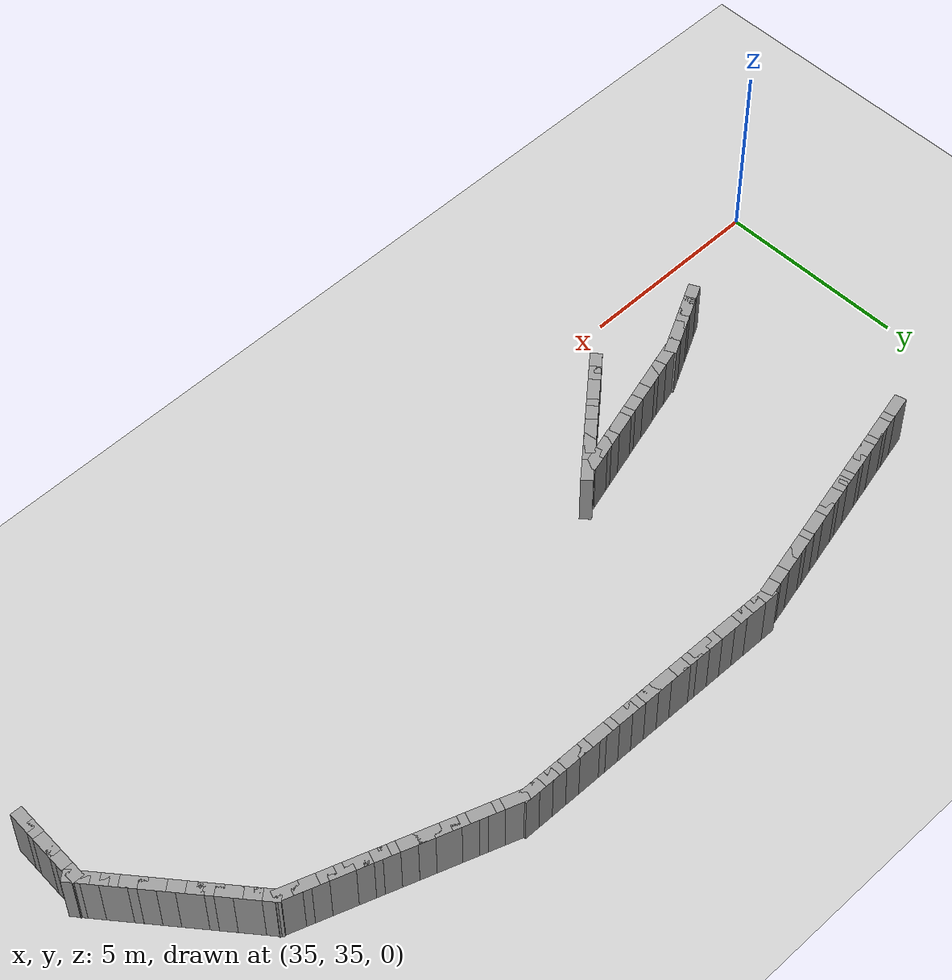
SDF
<sdf version="1.5">
 <world name="test_l_shape">
  <include><uri>model://sun</uri></include>
  <include><uri>model://ground_plane</uri></include>
  <model name="curbL_0">
   <static>true</static>
   <pose>59.346 38.500 0.750 0 0 2.252</pose>
   <link name="link">
    <collision name="col"><geometry><box><size>0.600 0.300 1.500</size></box></geometry></collision>
    <visual name="vis">
     <geometry><box><size>0.600 0.300 1.500</size></box></geometry>
     <material><ambient>0.6 0.6 0.6 1</ambient><diffuse>0.6 0.6 0.6 1</diffuse></material>
    </visual>
   </link>
  </model>
  <model name="curbL_1">
   <static>true</static>
   <pose>59.094 38.811 0.750 0 0 2.252</pose>
   <link name="link">
    <collision name="col"><geometry><box><size>0.600 0.300 1.500</size></box></geometry></collision>
    <visual name="vis">
     <geometry><box><size>0.600 0.300 1.500</size></box></geometry>
     <material><ambient>0.6 0.6 0.6 1</ambient><diffuse>0.6 0.6 0.6 1</diffuse></material>
    </visual>
   </link>
  </model>
  <model name="curbL_2">
   <static>true</static>
   <pose>58.842 39.122 0.750 0 0 2.252</pose>
   <link name="link">
    <collision name="col"><geometry><box><size>0.600 0.300 1.500</size></box></geometry></collision>
    <visual name="vis">
     <geometry><box><size>0.600 0.300 1.500</size></box></geometry>
     <material><ambient>0.6 0.6 0.6 1</ambient><diffuse>0.6 0.6 0.6 1</diffuse></material>
    </visual>
   </link>
  </model>
  <model name="curbL_3">
   <static>true</static>
   <pose>58.590 39.432 0.750 0 0 2.252</pose>
   <link name="link">
    <collision name="col"><geometry><box><size>0.600 0.300 1.500</size></box></geometry></collision>
    <visual name="vis">
     <geometry><box><size>0.600 0.300 1.500</size></box></geometry>
     <material><ambient>0.6 0.6 0.6 1</ambient><diffuse>0.6 0.6 0.6 1</diffuse></material>
    </visual>
   </link>
  </model>
  <model name="curbL_4">
   <static>true</static>
   <pose>58.338 39.743 0.750 0 0 2.252</pose>
   <link name="link">
    <collision name="col"><geometry><box><size>0.600 0.300 1.500</size></box></geometry></collision>
    <visual name="vis">
     <geometry><box><size>0.600 0.300 1.500</size></box></geometry>
     <material><ambient>0.6 0.6 0.6 1</ambient><diffuse>0.6 0.6 0.6 1</diffuse></material>
    </visual>
   </link>
  </model>
  <model name="curbL_5">
   <static>true</static>
   <pose>58.086 40.054 0.750 0 0 2.252</pose>
   <link name="link">
    <collision name="col"><geometry><box><size>0.600 0.300 1.500</size></box></geometry></collision>
    <visual name="vis">
     <geometry><box><size>0.600 0.300 1.500</size></box></geometry>
     <material><ambient>0.6 0.6 0.6 1</ambient><diffuse>0.6 0.6 0.6 1</diffuse></material>
    </visual>
   </link>
  </model>
  <model name="curbL_6">
   <static>true</static>
   <pose>57.834 40.365 0.750 0 0 2.252</pose>
   <link name="link">
    <collision name="col"><geometry><box><size>0.600 0.300 1.500</size></box></geometry></collision>
    <visual name="vis">
     <geometry><box><size>0.600 0.300 1.500</size></box></geometry>
     <material><ambient>0.6 0.6 0.6 1</ambient><diffuse>0.6 0.6 0.6 1</diffuse></material>
    </visual>
   </link>
  </model>
  <model name="curbL_7">
   <static>true</static>
   <pose>57.582 40.675 0.750 0 0 2.252</pose>
   <link name="link">
    <collision name="col"><geometry><box><size>0.600 0.300 1.500</size></box></geometry></collision>
    <visual name="vis">
     <geometry><box><size>0.600 0.300 1.500</size></box></geometry>
     <material><ambient>0.6 0.6 0.6 1</ambient><diffuse>0.6 0.6 0.6 1</diffuse></material>
    </visual>
   </link>
  </model>
  <model name="curbL_8">
   <static>true</static>
   <pose>57.330 40.986 0.750 0 0 2.252</pose>
   <link name="link">
    <collision name="col"><geometry><box><size>0.600 0.300 1.500</size></box></geometry></collision>
    <visual name="vis">
     <geometry><box><size>0.600 0.300 1.500</size></box></geometry>
     <material><ambient>0.6 0.6 0.6 1</ambient><diffuse>0.6 0.6 0.6 1</diffuse></material>
    </visual>
   </link>
  </model>
  <model name="curbL_9">
   <static>true</static>
   <pose>57.078 41.297 0.750 0 0 2.252</pose>
   <link name="link">
    <collision name="col"><geometry><box><size>0.600 0.300 1.500</size></box></geometry></collision>
    <visual name="vis">
     <geometry><box><size>0.600 0.300 1.500</size></box></geometry>
     <material><ambient>0.6 0.6 0.6 1</ambient><diffuse>0.6 0.6 0.6 1</diffuse></material>
    </visual>
   </link>
  </model>
  <model name="curbL_10">
   <static>true</static>
   <pose>56.826 41.607 0.750 0 0 2.252</pose>
   <link name="link">
    <collision name="col"><geometry><box><size>0.600 0.300 1.500</size></box></geometry></collision>
    <visual name="vis">
     <geometry><box><size>0.600 0.300 1.500</size></box></geometry>
     <material><ambient>0.6 0.6 0.6 1</ambient><diffuse>0.6 0.6 0.6 1</diffuse></material>
    </visual>
   </link>
  </model>
  <model name="curbL_11">
   <static>true</static>
   <pose>56.508 41.824 0.750 0 0 2.795</pose>
   <link name="link">
    <collision name="col"><geometry><box><size>0.600 0.300 1.500</size></box></geometry></collision>
    <visual name="vis">
     <geometry><box><size>0.600 0.300 1.500</size></box></geometry>
     <material><ambient>0.6 0.6 0.6 1</ambient><diffuse>0.6 0.6 0.6 1</diffuse></material>
    </visual>
   </link>
  </model>
  <model name="curbL_12">
   <static>true</static>
   <pose>56.131 41.960 0.750 0 0 2.795</pose>
   <link name="link">
    <collision name="col"><geometry><box><size>0.600 0.300 1.500</size></box></geometry></collision>
    <visual name="vis">
     <geometry><box><size>0.600 0.300 1.500</size></box></geometry>
     <material><ambient>0.6 0.6 0.6 1</ambient><diffuse>0.6 0.6 0.6 1</diffuse></material>
    </visual>
   </link>
  </model>
  <model name="curbL_13">
   <static>true</static>
   <pose>55.755 42.096 0.750 0 0 2.795</pose>
   <link name="link">
    <collision name="col"><geometry><box><size>0.600 0.300 1.500</size></box></geometry></collision>
    <visual name="vis">
     <geometry><box><size>0.600 0.300 1.500</size></box></geometry>
     <material><ambient>0.6 0.6 0.6 1</ambient><diffuse>0.6 0.6 0.6 1</diffuse></material>
    </visual>
   </link>
  </model>
  <model name="curbL_14">
   <static>true</static>
   <pose>55.379 42.232 0.750 0 0 2.795</pose>
   <link name="link">
    <collision name="col"><geometry><box><size>0.600 0.300 1.500</size></box></geometry></collision>
    <visual name="vis">
     <geometry><box><size>0.600 0.300 1.500</size></box></geometry>
     <material><ambient>0.6 0.6 0.6 1</ambient><diffuse>0.6 0.6 0.6 1</diffuse></material>
    </visual>
   </link>
  </model>
  <model name="curbL_15">
   <static>true</static>
   <pose>55.003 42.367 0.750 0 0 2.795</pose>
   <link name="link">
    <collision name="col"><geometry><box><size>0.600 0.300 1.500</size></box></geometry></collision>
    <visual name="vis">
     <geometry><box><size>0.600 0.300 1.500</size></box></geometry>
     <material><ambient>0.6 0.6 0.6 1</ambient><diffuse>0.6 0.6 0.6 1</diffuse></material>
    </visual>
   </link>
  </model>
  <model name="curbL_16">
   <static>true</static>
   <pose>54.626 42.503 0.750 0 0 2.795</pose>
   <link name="link">
    <collision name="col"><geometry><box><size>0.600 0.300 1.500</size></box></geometry></collision>
    <visual name="vis">
     <geometry><box><size>0.600 0.300 1.500</size></box></geometry>
     <material><ambient>0.6 0.6 0.6 1</ambient><diffuse>0.6 0.6 0.6 1</diffuse></material>
    </visual>
   </link>
  </model>
  <model name="curbL_17">
   <static>true</static>
   <pose>54.250 42.639 0.750 0 0 2.795</pose>
   <link name="link">
    <collision name="col"><geometry><box><size>0.600 0.300 1.500</size></box></geometry></collision>
    <visual name="vis">
     <geometry><box><size>0.600 0.300 1.500</size></box></geometry>
     <material><ambient>0.6 0.6 0.6 1</ambient><diffuse>0.6 0.6 0.6 1</diffuse></material>
    </visual>
   </link>
  </model>
  <model name="curbL_18">
   <static>true</static>
   <pose>53.874 42.775 0.750 0 0 2.795</pose>
   <link name="link">
    <collision name="col"><geometry><box><size>0.600 0.300 1.500</size></box></geometry></collision>
    <visual name="vis">
     <geometry><box><size>0.600 0.300 1.500</size></box></geometry>
     <material><ambient>0.6 0.6 0.6 1</ambient><diffuse>0.6 0.6 0.6 1</diffuse></material>
    </visual>
   </link>
  </model>
  <model name="curbL_19">
   <static>true</static>
   <pose>53.498 42.911 0.750 0 0 2.795</pose>
   <link name="link">
    <collision name="col"><geometry><box><size>0.600 0.300 1.500</size></box></geometry></collision>
    <visual name="vis">
     <geometry><box><size>0.600 0.300 1.500</size></box></geometry>
     <material><ambient>0.6 0.6 0.6 1</ambient><diffuse>0.6 0.6 0.6 1</diffuse></material>
    </visual>
   </link>
  </model>
  <model name="curbL_20">
   <static>true</static>
   <pose>53.122 43.047 0.750 0 0 2.795</pose>
   <link name="link">
    <collision name="col"><geometry><box><size>0.600 0.300 1.500</size></box></geometry></collision>
    <visual name="vis">
     <geometry><box><size>0.600 0.300 1.500</size></box></geometry>
     <material><ambient>0.6 0.6 0.6 1</ambient><diffuse>0.6 0.6 0.6 1</diffuse></material>
    </visual>
   </link>
  </model>
  <model name="curbL_21">
   <static>true</static>
   <pose>52.745 43.183 0.750 0 0 2.795</pose>
   <link name="link">
    <collision name="col"><geometry><box><size>0.600 0.300 1.500</size></box></geometry></collision>
    <visual name="vis">
     <geometry><box><size>0.600 0.300 1.500</size></box></geometry>
     <material><ambient>0.6 0.6 0.6 1</ambient><diffuse>0.6 0.6 0.6 1</diffuse></material>
    </visual>
   </link>
  </model>
  <model name="curbL_22">
   <static>true</static>
   <pose>52.369 43.318 0.750 0 0 2.795</pose>
   <link name="link">
    <collision name="col"><geometry><box><size>0.600 0.300 1.500</size></box></geometry></collision>
    <visual name="vis">
     <geometry><box><size>0.600 0.300 1.500</size></box></geometry>
     <material><ambient>0.6 0.6 0.6 1</ambient><diffuse>0.6 0.6 0.6 1</diffuse></material>
    </visual>
   </link>
  </model>
  <model name="curbL_23">
   <static>true</static>
   <pose>51.993 43.454 0.750 0 0 2.795</pose>
   <link name="link">
    <collision name="col"><geometry><box><size>0.600 0.300 1.500</size></box></geometry></collision>
    <visual name="vis">
     <geometry><box><size>0.600 0.300 1.500</size></box></geometry>
     <material><ambient>0.6 0.6 0.6 1</ambient><diffuse>0.6 0.6 0.6 1</diffuse></material>
    </visual>
   </link>
  </model>
  <model name="curbL_24">
   <static>true</static>
   <pose>51.617 43.590 0.750 0 0 2.795</pose>
   <link name="link">
    <collision name="col"><geometry><box><size>0.600 0.300 1.500</size></box></geometry></collision>
    <visual name="vis">
     <geometry><box><size>0.600 0.300 1.500</size></box></geometry>
     <material><ambient>0.6 0.6 0.6 1</ambient><diffuse>0.6 0.6 0.6 1</diffuse></material>
    </visual>
   </link>
  </model>
  <model name="curbL_25">
   <static>true</static>
   <pose>51.233 43.686 0.750 0 0 3.122</pose>
   <link name="link">
    <collision name="col"><geometry><box><size>0.600 0.300 1.500</size></box></geometry></collision>
    <visual name="vis">
     <geometry><box><size>0.600 0.300 1.500</size></box></geometry>
     <material><ambient>0.6 0.6 0.6 1</ambient><diffuse>0.6 0.6 0.6 1</diffuse></material>
    </visual>
   </link>
  </model>
  <model name="curbL_26">
   <static>true</static>
   <pose>50.833 43.694 0.750 0 0 3.122</pose>
   <link name="link">
    <collision name="col"><geometry><box><size>0.600 0.300 1.500</size></box></geometry></collision>
    <visual name="vis">
     <geometry><box><size>0.600 0.300 1.500</size></box></geometry>
     <material><ambient>0.6 0.6 0.6 1</ambient><diffuse>0.6 0.6 0.6 1</diffuse></material>
    </visual>
   </link>
  </model>
  <model name="curbL_27">
   <static>true</static>
   <pose>50.433 43.702 0.750 0 0 3.122</pose>
   <link name="link">
    <collision name="col"><geometry><box><size>0.600 0.300 1.500</size></box></geometry></collision>
    <visual name="vis">
     <geometry><box><size>0.600 0.300 1.500</size></box></geometry>
     <material><ambient>0.6 0.6 0.6 1</ambient><diffuse>0.6 0.6 0.6 1</diffuse></material>
    </visual>
   </link>
  </model>
  <model name="curbL_28">
   <static>true</static>
   <pose>50.033 43.710 0.750 0 0 3.122</pose>
   <link name="link">
    <collision name="col"><geometry><box><size>0.600 0.300 1.500</size></box></geometry></collision>
    <visual name="vis">
     <geometry><box><size>0.600 0.300 1.500</size></box></geometry>
     <material><ambient>0.6 0.6 0.6 1</ambient><diffuse>0.6 0.6 0.6 1</diffuse></material>
    </visual>
   </link>
  </model>
  <model name="curbL_29">
   <static>true</static>
   <pose>49.633 43.718 0.750 0 0 3.122</pose>
   <link name="link">
    <collision name="col"><geometry><box><size>0.600 0.300 1.500</size></box></geometry></collision>
    <visual name="vis">
     <geometry><box><size>0.600 0.300 1.500</size></box></geometry>
     <material><ambient>0.6 0.6 0.6 1</ambient><diffuse>0.6 0.6 0.6 1</diffuse></material>
    </visual>
   </link>
  </model>
  <model name="curbL_30">
   <static>true</static>
   <pose>49.234 43.725 0.750 0 0 3.122</pose>
   <link name="link">
    <collision name="col"><geometry><box><size>0.600 0.300 1.500</size></box></geometry></collision>
    <visual name="vis">
     <geometry><box><size>0.600 0.300 1.500</size></box></geometry>
     <material><ambient>0.6 0.6 0.6 1</ambient><diffuse>0.6 0.6 0.6 1</diffuse></material>
    </visual>
   </link>
  </model>
  <model name="curbL_31">
   <static>true</static>
   <pose>48.834 43.733 0.750 0 0 3.122</pose>
   <link name="link">
    <collision name="col"><geometry><box><size>0.600 0.300 1.500</size></box></geometry></collision>
    <visual name="vis">
     <geometry><box><size>0.600 0.300 1.500</size></box></geometry>
     <material><ambient>0.6 0.6 0.6 1</ambient><diffuse>0.6 0.6 0.6 1</diffuse></material>
    </visual>
   </link>
  </model>
  <model name="curbL_32">
   <static>true</static>
   <pose>48.434 43.741 0.750 0 0 3.122</pose>
   <link name="link">
    <collision name="col"><geometry><box><size>0.600 0.300 1.500</size></box></geometry></collision>
    <visual name="vis">
     <geometry><box><size>0.600 0.300 1.500</size></box></geometry>
     <material><ambient>0.6 0.6 0.6 1</ambient><diffuse>0.6 0.6 0.6 1</diffuse></material>
    </visual>
   </link>
  </model>
  <model name="curbL_33">
   <static>true</static>
   <pose>48.034 43.749 0.750 0 0 3.122</pose>
   <link name="link">
    <collision name="col"><geometry><box><size>0.600 0.300 1.500</size></box></geometry></collision>
    <visual name="vis">
     <geometry><box><size>0.600 0.300 1.500</size></box></geometry>
     <material><ambient>0.6 0.6 0.6 1</ambient><diffuse>0.6 0.6 0.6 1</diffuse></material>
    </visual>
   </link>
  </model>
  <model name="curbL_34">
   <static>true</static>
   <pose>47.634 43.757 0.750 0 0 3.122</pose>
   <link name="link">
    <collision name="col"><geometry><box><size>0.600 0.300 1.500</size></box></geometry></collision>
    <visual name="vis">
     <geometry><box><size>0.600 0.300 1.500</size></box></geometry>
     <material><ambient>0.6 0.6 0.6 1</ambient><diffuse>0.6 0.6 0.6 1</diffuse></material>
    </visual>
   </link>
  </model>
  <model name="curbL_35">
   <static>true</static>
   <pose>47.234 43.765 0.750 0 0 3.122</pose>
   <link name="link">
    <collision name="col"><geometry><box><size>0.600 0.300 1.500</size></box></geometry></collision>
    <visual name="vis">
     <geometry><box><size>0.600 0.300 1.500</size></box></geometry>
     <material><ambient>0.6 0.6 0.6 1</ambient><diffuse>0.6 0.6 0.6 1</diffuse></material>
    </visual>
   </link>
  </model>
  <model name="curbL_36">
   <static>true</static>
   <pose>46.834 43.773 0.750 0 0 3.122</pose>
   <link name="link">
    <collision name="col"><geometry><box><size>0.600 0.300 1.500</size></box></geometry></collision>
    <visual name="vis">
     <geometry><box><size>0.600 0.300 1.500</size></box></geometry>
     <material><ambient>0.6 0.6 0.6 1</ambient><diffuse>0.6 0.6 0.6 1</diffuse></material>
    </visual>
   </link>
  </model>
  <model name="curbL_37">
   <static>true</static>
   <pose>46.434 43.780 0.750 0 0 3.122</pose>
   <link name="link">
    <collision name="col"><geometry><box><size>0.600 0.300 1.500</size></box></geometry></collision>
    <visual name="vis">
     <geometry><box><size>0.600 0.300 1.500</size></box></geometry>
     <material><ambient>0.6 0.6 0.6 1</ambient><diffuse>0.6 0.6 0.6 1</diffuse></material>
    </visual>
   </link>
  </model>
  <model name="curbL_38">
   <static>true</static>
   <pose>46.034 43.788 0.750 0 0 3.122</pose>
   <link name="link">
    <collision name="col"><geometry><box><size>0.600 0.300 1.500</size></box></geometry></collision>
    <visual name="vis">
     <geometry><box><size>0.600 0.300 1.500</size></box></geometry>
     <material><ambient>0.6 0.6 0.6 1</ambient><diffuse>0.6 0.6 0.6 1</diffuse></material>
    </visual>
   </link>
  </model>
  <model name="curbL_39">
   <static>true</static>
   <pose>45.634 43.796 0.750 0 0 3.122</pose>
   <link name="link">
    <collision name="col"><geometry><box><size>0.600 0.300 1.500</size></box></geometry></collision>
    <visual name="vis">
     <geometry><box><size>0.600 0.300 1.500</size></box></geometry>
     <material><ambient>0.6 0.6 0.6 1</ambient><diffuse>0.6 0.6 0.6 1</diffuse></material>
    </visual>
   </link>
  </model>
  <model name="curbL_40">
   <static>true</static>
   <pose>45.234 43.804 0.750 0 0 3.122</pose>
   <link name="link">
    <collision name="col"><geometry><box><size>0.600 0.300 1.500</size></box></geometry></collision>
    <visual name="vis">
     <geometry><box><size>0.600 0.300 1.500</size></box></geometry>
     <material><ambient>0.6 0.6 0.6 1</ambient><diffuse>0.6 0.6 0.6 1</diffuse></material>
    </visual>
   </link>
  </model>
  <model name="curbL_41">
   <static>true</static>
   <pose>44.834 43.812 0.750 0 0 3.122</pose>
   <link name="link">
    <collision name="col"><geometry><box><size>0.600 0.300 1.500</size></box></geometry></collision>
    <visual name="vis">
     <geometry><box><size>0.600 0.300 1.500</size></box></geometry>
     <material><ambient>0.6 0.6 0.6 1</ambient><diffuse>0.6 0.6 0.6 1</diffuse></material>
    </visual>
   </link>
  </model>
  <model name="curbL_42">
   <static>true</static>
   <pose>44.434 43.820 0.750 0 0 3.122</pose>
   <link name="link">
    <collision name="col"><geometry><box><size>0.600 0.300 1.500</size></box></geometry></collision>
    <visual name="vis">
     <geometry><box><size>0.600 0.300 1.500</size></box></geometry>
     <material><ambient>0.6 0.6 0.6 1</ambient><diffuse>0.6 0.6 0.6 1</diffuse></material>
    </visual>
   </link>
  </model>
  <model name="curbL_43">
   <static>true</static>
   <pose>44.035 43.827 0.750 0 0 3.122</pose>
   <link name="link">
    <collision name="col"><geometry><box><size>0.600 0.300 1.500</size></box></geometry></collision>
    <visual name="vis">
     <geometry><box><size>0.600 0.300 1.500</size></box></geometry>
     <material><ambient>0.6 0.6 0.6 1</ambient><diffuse>0.6 0.6 0.6 1</diffuse></material>
    </visual>
   </link>
  </model>
  <model name="curbL_44">
   <static>true</static>
   <pose>43.645 43.739 0.750 0 0 -2.911</pose>
   <link name="link">
    <collision name="col"><geometry><box><size>0.600 0.300 1.500</size></box></geometry></collision>
    <visual name="vis">
     <geometry><box><size>0.600 0.300 1.500</size></box></geometry>
     <material><ambient>0.6 0.6 0.6 1</ambient><diffuse>0.6 0.6 0.6 1</diffuse></material>
    </visual>
   </link>
  </model>
  <model name="curbL_45">
   <static>true</static>
   <pose>43.255 43.648 0.750 0 0 -2.911</pose>
   <link name="link">
    <collision name="col"><geometry><box><size>0.600 0.300 1.500</size></box></geometry></collision>
    <visual name="vis">
     <geometry><box><size>0.600 0.300 1.500</size></box></geometry>
     <material><ambient>0.6 0.6 0.6 1</ambient><diffuse>0.6 0.6 0.6 1</diffuse></material>
    </visual>
   </link>
  </model>
  <model name="curbL_46">
   <static>true</static>
   <pose>42.866 43.557 0.750 0 0 -2.911</pose>
   <link name="link">
    <collision name="col"><geometry><box><size>0.600 0.300 1.500</size></box></geometry></collision>
    <visual name="vis">
     <geometry><box><size>0.600 0.300 1.500</size></box></geometry>
     <material><ambient>0.6 0.6 0.6 1</ambient><diffuse>0.6 0.6 0.6 1</diffuse></material>
    </visual>
   </link>
  </model>
  <model name="curbL_47">
   <static>true</static>
   <pose>42.476 43.465 0.750 0 0 -2.911</pose>
   <link name="link">
    <collision name="col"><geometry><box><size>0.600 0.300 1.500</size></box></geometry></collision>
    <visual name="vis">
     <geometry><box><size>0.600 0.300 1.500</size></box></geometry>
     <material><ambient>0.6 0.6 0.6 1</ambient><diffuse>0.6 0.6 0.6 1</diffuse></material>
    </visual>
   </link>
  </model>
  <model name="curbL_48">
   <static>true</static>
   <pose>42.087 43.374 0.750 0 0 -2.911</pose>
   <link name="link">
    <collision name="col"><geometry><box><size>0.600 0.300 1.500</size></box></geometry></collision>
    <visual name="vis">
     <geometry><box><size>0.600 0.300 1.500</size></box></geometry>
     <material><ambient>0.6 0.6 0.6 1</ambient><diffuse>0.6 0.6 0.6 1</diffuse></material>
    </visual>
   </link>
  </model>
  <model name="curbL_49">
   <static>true</static>
   <pose>41.698 43.283 0.750 0 0 -2.911</pose>
   <link name="link">
    <collision name="col"><geometry><box><size>0.600 0.300 1.500</size></box></geometry></collision>
    <visual name="vis">
     <geometry><box><size>0.600 0.300 1.500</size></box></geometry>
     <material><ambient>0.6 0.6 0.6 1</ambient><diffuse>0.6 0.6 0.6 1</diffuse></material>
    </visual>
   </link>
  </model>
  <model name="curbL_50">
   <static>true</static>
   <pose>41.308 43.192 0.750 0 0 -2.911</pose>
   <link name="link">
    <collision name="col"><geometry><box><size>0.600 0.300 1.500</size></box></geometry></collision>
    <visual name="vis">
     <geometry><box><size>0.600 0.300 1.500</size></box></geometry>
     <material><ambient>0.6 0.6 0.6 1</ambient><diffuse>0.6 0.6 0.6 1</diffuse></material>
    </visual>
   </link>
  </model>
  <model name="curbL_51">
   <static>true</static>
   <pose>40.919 43.100 0.750 0 0 -2.911</pose>
   <link name="link">
    <collision name="col"><geometry><box><size>0.600 0.300 1.500</size></box></geometry></collision>
    <visual name="vis">
     <geometry><box><size>0.600 0.300 1.500</size></box></geometry>
     <material><ambient>0.6 0.6 0.6 1</ambient><diffuse>0.6 0.6 0.6 1</diffuse></material>
    </visual>
   </link>
  </model>
  <model name="curbL_52">
   <static>true</static>
   <pose>40.529 43.009 0.750 0 0 -2.911</pose>
   <link name="link">
    <collision name="col"><geometry><box><size>0.600 0.300 1.500</size></box></geometry></collision>
    <visual name="vis">
     <geometry><box><size>0.600 0.300 1.500</size></box></geometry>
     <material><ambient>0.6 0.6 0.6 1</ambient><diffuse>0.6 0.6 0.6 1</diffuse></material>
    </visual>
   </link>
  </model>
  <model name="curbL_53">
   <static>true</static>
   <pose>40.140 42.918 0.750 0 0 -2.911</pose>
   <link name="link">
    <collision name="col"><geometry><box><size>0.600 0.300 1.500</size></box></geometry></collision>
    <visual name="vis">
     <geometry><box><size>0.600 0.300 1.500</size></box></geometry>
     <material><ambient>0.6 0.6 0.6 1</ambient><diffuse>0.6 0.6 0.6 1</diffuse></material>
    </visual>
   </link>
  </model>
  <model name="curbL_54">
   <static>true</static>
   <pose>39.750 42.826 0.750 0 0 -2.911</pose>
   <link name="link">
    <collision name="col"><geometry><box><size>0.600 0.300 1.500</size></box></geometry></collision>
    <visual name="vis">
     <geometry><box><size>0.600 0.300 1.500</size></box></geometry>
     <material><ambient>0.6 0.6 0.6 1</ambient><diffuse>0.6 0.6 0.6 1</diffuse></material>
    </visual>
   </link>
  </model>
  <model name="curbL_55">
   <static>true</static>
   <pose>39.361 42.735 0.750 0 0 -2.911</pose>
   <link name="link">
    <collision name="col"><geometry><box><size>0.600 0.300 1.500</size></box></geometry></collision>
    <visual name="vis">
     <geometry><box><size>0.600 0.300 1.500</size></box></geometry>
     <material><ambient>0.6 0.6 0.6 1</ambient><diffuse>0.6 0.6 0.6 1</diffuse></material>
    </visual>
   </link>
  </model>
  <model name="curbL_56">
   <static>true</static>
   <pose>38.971 42.644 0.750 0 0 -2.911</pose>
   <link name="link">
    <collision name="col"><geometry><box><size>0.600 0.300 1.500</size></box></geometry></collision>
    <visual name="vis">
     <geometry><box><size>0.600 0.300 1.500</size></box></geometry>
     <material><ambient>0.6 0.6 0.6 1</ambient><diffuse>0.6 0.6 0.6 1</diffuse></material>
    </visual>
   </link>
  </model>
  <model name="curbL_57">
   <static>true</static>
   <pose>38.582 42.552 0.750 0 0 -2.911</pose>
   <link name="link">
    <collision name="col"><geometry><box><size>0.600 0.300 1.500</size></box></geometry></collision>
    <visual name="vis">
     <geometry><box><size>0.600 0.300 1.500</size></box></geometry>
     <material><ambient>0.6 0.6 0.6 1</ambient><diffuse>0.6 0.6 0.6 1</diffuse></material>
    </visual>
   </link>
  </model>
  <model name="curbL_58">
   <static>true</static>
   <pose>38.193 42.461 0.750 0 0 -2.911</pose>
   <link name="link">
    <collision name="col"><geometry><box><size>0.600 0.300 1.500</size></box></geometry></collision>
    <visual name="vis">
     <geometry><box><size>0.600 0.300 1.500</size></box></geometry>
     <material><ambient>0.6 0.6 0.6 1</ambient><diffuse>0.6 0.6 0.6 1</diffuse></material>
    </visual>
   </link>
  </model>
  <model name="curbL_59">
   <static>true</static>
   <pose>37.803 42.370 0.750 0 0 -2.911</pose>
   <link name="link">
    <collision name="col"><geometry><box><size>0.600 0.300 1.500</size></box></geometry></collision>
    <visual name="vis">
     <geometry><box><size>0.600 0.300 1.500</size></box></geometry>
     <material><ambient>0.6 0.6 0.6 1</ambient><diffuse>0.6 0.6 0.6 1</diffuse></material>
    </visual>
   </link>
  </model>
  <model name="curbL_256">
   <static>true</static>
   <pose>59.253 36.691 0.750 0 0 1.520</pose>
   <link name="link">
    <collision name="col"><geometry><box><size>0.600 0.300 1.500</size></box></geometry></collision>
    <visual name="vis">
     <geometry><box><size>0.600 0.300 1.500</size></box></geometry>
     <material><ambient>0.6 0.6 0.6 1</ambient><diffuse>0.6 0.6 0.6 1</diffuse></material>
    </visual>
   </link>
  </model>
  <model name="curbL_257">
   <static>true</static>
   <pose>59.273 37.091 0.750 0 0 1.520</pose>
   <link name="link">
    <collision name="col"><geometry><box><size>0.600 0.300 1.500</size></box></geometry></collision>
    <visual name="vis">
     <geometry><box><size>0.600 0.300 1.500</size></box></geometry>
     <material><ambient>0.6 0.6 0.6 1</ambient><diffuse>0.6 0.6 0.6 1</diffuse></material>
    </visual>
   </link>
  </model>
  <model name="curbL_258">
   <static>true</static>
   <pose>59.294 37.490 0.750 0 0 1.520</pose>
   <link name="link">
    <collision name="col"><geometry><box><size>0.600 0.300 1.500</size></box></geometry></collision>
    <visual name="vis">
     <geometry><box><size>0.600 0.300 1.500</size></box></geometry>
     <material><ambient>0.6 0.6 0.6 1</ambient><diffuse>0.6 0.6 0.6 1</diffuse></material>
    </visual>
   </link>
  </model>
  <model name="curbL_259">
   <static>true</static>
   <pose>59.314 37.890 0.750 0 0 1.520</pose>
   <link name="link">
    <collision name="col"><geometry><box><size>0.600 0.300 1.500</size></box></geometry></collision>
    <visual name="vis">
     <geometry><box><size>0.600 0.300 1.500</size></box></geometry>
     <material><ambient>0.6 0.6 0.6 1</ambient><diffuse>0.6 0.6 0.6 1</diffuse></material>
    </visual>
   </link>
  </model>
  <model name="curbL_260">
   <static>true</static>
   <pose>59.335 38.289 0.750 0 0 1.520</pose>
   <link name="link">
    <collision name="col"><geometry><box><size>0.600 0.300 1.500</size></box></geometry></collision>
    <visual name="vis">
     <geometry><box><size>0.600 0.300 1.500</size></box></geometry>
     <material><ambient>0.6 0.6 0.6 1</ambient><diffuse>0.6 0.6 0.6 1</diffuse></material>
    </visual>
   </link>
  </model>
  <model name="curbR_32">
   <static>true</static>
   <pose>38.641 36.665 0.750 0 0 0.477</pose>
   <link name="link">
    <collision name="col"><geometry><box><size>0.600 0.300 1.500</size></box></geometry></collision>
    <visual name="vis">
     <geometry><box><size>0.600 0.300 1.500</size></box></geometry>
     <material><ambient>0.6 0.6 0.6 1</ambient><diffuse>0.6 0.6 0.6 1</diffuse></material>
    </visual>
   </link>
  </model>
  <model name="curbR_33">
   <static>true</static>
   <pose>38.996 36.849 0.750 0 0 0.477</pose>
   <link name="link">
    <collision name="col"><geometry><box><size>0.600 0.300 1.500</size></box></geometry></collision>
    <visual name="vis">
     <geometry><box><size>0.600 0.300 1.500</size></box></geometry>
     <material><ambient>0.6 0.6 0.6 1</ambient><diffuse>0.6 0.6 0.6 1</diffuse></material>
    </visual>
   </link>
  </model>
  <model name="curbR_34">
   <static>true</static>
   <pose>39.351 37.032 0.750 0 0 0.477</pose>
   <link name="link">
    <collision name="col"><geometry><box><size>0.600 0.300 1.500</size></box></geometry></collision>
    <visual name="vis">
     <geometry><box><size>0.600 0.300 1.500</size></box></geometry>
     <material><ambient>0.6 0.6 0.6 1</ambient><diffuse>0.6 0.6 0.6 1</diffuse></material>
    </visual>
   </link>
  </model>
  <model name="curbR_35">
   <static>true</static>
   <pose>39.707 37.216 0.750 0 0 0.477</pose>
   <link name="link">
    <collision name="col"><geometry><box><size>0.600 0.300 1.500</size></box></geometry></collision>
    <visual name="vis">
     <geometry><box><size>0.600 0.300 1.500</size></box></geometry>
     <material><ambient>0.6 0.6 0.6 1</ambient><diffuse>0.6 0.6 0.6 1</diffuse></material>
    </visual>
   </link>
  </model>
  <model name="curbR_36">
   <static>true</static>
   <pose>40.062 37.399 0.750 0 0 0.477</pose>
   <link name="link">
    <collision name="col"><geometry><box><size>0.600 0.300 1.500</size></box></geometry></collision>
    <visual name="vis">
     <geometry><box><size>0.600 0.300 1.500</size></box></geometry>
     <material><ambient>0.6 0.6 0.6 1</ambient><diffuse>0.6 0.6 0.6 1</diffuse></material>
    </visual>
   </link>
  </model>
  <model name="curbR_37">
   <static>true</static>
   <pose>40.442 37.522 0.750 0 0 0.279</pose>
   <link name="link">
    <collision name="col"><geometry><box><size>0.600 0.300 1.500</size></box></geometry></collision>
    <visual name="vis">
     <geometry><box><size>0.600 0.300 1.500</size></box></geometry>
     <material><ambient>0.6 0.6 0.6 1</ambient><diffuse>0.6 0.6 0.6 1</diffuse></material>
    </visual>
   </link>
  </model>
  <model name="curbR_38">
   <static>true</static>
   <pose>40.827 37.632 0.750 0 0 0.279</pose>
   <link name="link">
    <collision name="col"><geometry><box><size>0.600 0.300 1.500</size></box></geometry></collision>
    <visual name="vis">
     <geometry><box><size>0.600 0.300 1.500</size></box></geometry>
     <material><ambient>0.6 0.6 0.6 1</ambient><diffuse>0.6 0.6 0.6 1</diffuse></material>
    </visual>
   </link>
  </model>
  <model name="curbR_39">
   <static>true</static>
   <pose>41.211 37.742 0.750 0 0 0.279</pose>
   <link name="link">
    <collision name="col"><geometry><box><size>0.600 0.300 1.500</size></box></geometry></collision>
    <visual name="vis">
     <geometry><box><size>0.600 0.300 1.500</size></box></geometry>
     <material><ambient>0.6 0.6 0.6 1</ambient><diffuse>0.6 0.6 0.6 1</diffuse></material>
    </visual>
   </link>
  </model>
  <model name="curbR_40">
   <static>true</static>
   <pose>41.596 37.853 0.750 0 0 0.279</pose>
   <link name="link">
    <collision name="col"><geometry><box><size>0.600 0.300 1.500</size></box></geometry></collision>
    <visual name="vis">
     <geometry><box><size>0.600 0.300 1.500</size></box></geometry>
     <material><ambient>0.6 0.6 0.6 1</ambient><diffuse>0.6 0.6 0.6 1</diffuse></material>
    </visual>
   </link>
  </model>
  <model name="curbR_41">
   <static>true</static>
   <pose>41.980 37.963 0.750 0 0 0.279</pose>
   <link name="link">
    <collision name="col"><geometry><box><size>0.600 0.300 1.500</size></box></geometry></collision>
    <visual name="vis">
     <geometry><box><size>0.600 0.300 1.500</size></box></geometry>
     <material><ambient>0.6 0.6 0.6 1</ambient><diffuse>0.6 0.6 0.6 1</diffuse></material>
    </visual>
   </link>
  </model>
  <model name="curbR_42">
   <static>true</static>
   <pose>42.364 38.073 0.750 0 0 0.279</pose>
   <link name="link">
    <collision name="col"><geometry><box><size>0.600 0.300 1.500</size></box></geometry></collision>
    <visual name="vis">
     <geometry><box><size>0.600 0.300 1.500</size></box></geometry>
     <material><ambient>0.6 0.6 0.6 1</ambient><diffuse>0.6 0.6 0.6 1</diffuse></material>
    </visual>
   </link>
  </model>
  <model name="curbR_43">
   <static>true</static>
   <pose>42.749 38.184 0.750 0 0 0.279</pose>
   <link name="link">
    <collision name="col"><geometry><box><size>0.600 0.300 1.500</size></box></geometry></collision>
    <visual name="vis">
     <geometry><box><size>0.600 0.300 1.500</size></box></geometry>
     <material><ambient>0.6 0.6 0.6 1</ambient><diffuse>0.6 0.6 0.6 1</diffuse></material>
    </visual>
   </link>
  </model>
  <model name="curbR_44">
   <static>true</static>
   <pose>43.133 38.294 0.750 0 0 0.279</pose>
   <link name="link">
    <collision name="col"><geometry><box><size>0.600 0.300 1.500</size></box></geometry></collision>
    <visual name="vis">
     <geometry><box><size>0.600 0.300 1.500</size></box></geometry>
     <material><ambient>0.6 0.6 0.6 1</ambient><diffuse>0.6 0.6 0.6 1</diffuse></material>
    </visual>
   </link>
  </model>
  <model name="curbR_45">
   <static>true</static>
   <pose>43.518 38.404 0.750 0 0 0.279</pose>
   <link name="link">
    <collision name="col"><geometry><box><size>0.600 0.300 1.500</size></box></geometry></collision>
    <visual name="vis">
     <geometry><box><size>0.600 0.300 1.500</size></box></geometry>
     <material><ambient>0.6 0.6 0.6 1</ambient><diffuse>0.6 0.6 0.6 1</diffuse></material>
    </visual>
   </link>
  </model>
  <model name="curbR_46">
   <static>true</static>
   <pose>43.902 38.515 0.750 0 0 0.279</pose>
   <link name="link">
    <collision name="col"><geometry><box><size>0.600 0.300 1.500</size></box></geometry></collision>
    <visual name="vis">
     <geometry><box><size>0.600 0.300 1.500</size></box></geometry>
     <material><ambient>0.6 0.6 0.6 1</ambient><diffuse>0.6 0.6 0.6 1</diffuse></material>
    </visual>
   </link>
  </model>
  <model name="curbR_47">
   <static>true</static>
   <pose>44.264 38.613 0.750 0 0 -2.432</pose>
   <link name="link">
    <collision name="col"><geometry><box><size>0.600 0.300 1.500</size></box></geometry></collision>
    <visual name="vis">
     <geometry><box><size>0.600 0.300 1.500</size></box></geometry>
     <material><ambient>0.6 0.6 0.6 1</ambient><diffuse>0.6 0.6 0.6 1</diffuse></material>
    </visual>
   </link>
  </model>
  <model name="curbR_48">
   <static>true</static>
   <pose>43.961 38.352 0.750 0 0 -2.432</pose>
   <link name="link">
    <collision name="col"><geometry><box><size>0.600 0.300 1.500</size></box></geometry></collision>
    <visual name="vis">
     <geometry><box><size>0.600 0.300 1.500</size></box></geometry>
     <material><ambient>0.6 0.6 0.6 1</ambient><diffuse>0.6 0.6 0.6 1</diffuse></material>
    </visual>
   </link>
  </model>
  <model name="curbR_49">
   <static>true</static>
   <pose>43.657 38.091 0.750 0 0 -2.432</pose>
   <link name="link">
    <collision name="col"><geometry><box><size>0.600 0.300 1.500</size></box></geometry></collision>
    <visual name="vis">
     <geometry><box><size>0.600 0.300 1.500</size></box></geometry>
     <material><ambient>0.6 0.6 0.6 1</ambient><diffuse>0.6 0.6 0.6 1</diffuse></material>
    </visual>
   </link>
  </model>
  <model name="curbR_50">
   <static>true</static>
   <pose>43.354 37.831 0.750 0 0 -2.432</pose>
   <link name="link">
    <collision name="col"><geometry><box><size>0.600 0.300 1.500</size></box></geometry></collision>
    <visual name="vis">
     <geometry><box><size>0.600 0.300 1.500</size></box></geometry>
     <material><ambient>0.6 0.6 0.6 1</ambient><diffuse>0.6 0.6 0.6 1</diffuse></material>
    </visual>
   </link>
  </model>
  <model name="curbR_51">
   <static>true</static>
   <pose>43.051 37.570 0.750 0 0 -2.432</pose>
   <link name="link">
    <collision name="col"><geometry><box><size>0.600 0.300 1.500</size></box></geometry></collision>
    <visual name="vis">
     <geometry><box><size>0.600 0.300 1.500</size></box></geometry>
     <material><ambient>0.6 0.6 0.6 1</ambient><diffuse>0.6 0.6 0.6 1</diffuse></material>
    </visual>
   </link>
  </model>
  <model name="curbR_52">
   <static>true</static>
   <pose>42.747 37.309 0.750 0 0 -2.432</pose>
   <link name="link">
    <collision name="col"><geometry><box><size>0.600 0.300 1.500</size></box></geometry></collision>
    <visual name="vis">
     <geometry><box><size>0.600 0.300 1.500</size></box></geometry>
     <material><ambient>0.6 0.6 0.6 1</ambient><diffuse>0.6 0.6 0.6 1</diffuse></material>
    </visual>
   </link>
  </model>
  <model name="curbR_53">
   <static>true</static>
   <pose>42.444 37.049 0.750 0 0 -2.432</pose>
   <link name="link">
    <collision name="col"><geometry><box><size>0.600 0.300 1.500</size></box></geometry></collision>
    <visual name="vis">
     <geometry><box><size>0.600 0.300 1.500</size></box></geometry>
     <material><ambient>0.6 0.6 0.6 1</ambient><diffuse>0.6 0.6 0.6 1</diffuse></material>
    </visual>
   </link>
  </model>
  <model name="curbR_54">
   <static>true</static>
   <pose>42.140 36.788 0.750 0 0 -2.432</pose>
   <link name="link">
    <collision name="col"><geometry><box><size>0.600 0.300 1.500</size></box></geometry></collision>
    <visual name="vis">
     <geometry><box><size>0.600 0.300 1.500</size></box></geometry>
     <material><ambient>0.6 0.6 0.6 1</ambient><diffuse>0.6 0.6 0.6 1</diffuse></material>
    </visual>
   </link>
  </model>
  <model name="curbR_55">
   <static>true</static>
   <pose>41.837 36.527 0.750 0 0 -2.432</pose>
   <link name="link">
    <collision name="col"><geometry><box><size>0.600 0.300 1.500</size></box></geometry></collision>
    <visual name="vis">
     <geometry><box><size>0.600 0.300 1.500</size></box></geometry>
     <material><ambient>0.6 0.6 0.6 1</ambient><diffuse>0.6 0.6 0.6 1</diffuse></material>
    </visual>
   </link>
  </model>
 </world>
</sdf>
